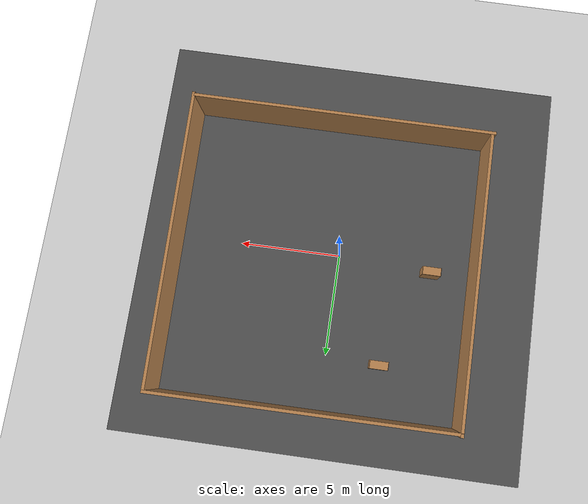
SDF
<sdf version="1.7">
 <world name="default">
  <light name="sun" type="directional">
   <pose>0 0 10 0 -0 0</pose>
   <diffuse>0.8 0.8 0.8 1</diffuse>
   <specular>0.2 0.2 0.2 1</specular>
   <attenuation>
    <range>1000</range>
    <constant>0.9</constant>
    <linear>0.01</linear>
    <quadratic>0.001</quadratic>
   </attenuation>
   <direction>-0.5 0.1 -0.9</direction>
   <spot><inner_angle>0</inner_angle><outer_angle>0</outer_angle><falloff>0</falloff></spot>
  </light>
  <model name="ground_plane">
   <static>1</static>
   <link name="link">
    <collision name="collision">
     <geometry><plane><normal>0 0 1</normal><size>100 100</size></plane></geometry>
     <surface><friction><ode><mu>100</mu><mu2>50</mu2></ode></friction></surface>
    </collision>
    <visual name="visual">
     <cast_shadows>0</cast_shadows>
     <geometry><plane><normal>0 0 1</normal><size>100 100</size></plane></geometry>
     <material>
      <script><uri>file://media/materials/scripts/gazebo.material</uri><name>Gazebo/Grey</name></script>
     </material>
    </visual>
   </link>
  </model>
  <gravity>0 0 -9.8</gravity>
  <magnetic_field>6e-06 2.3e-05 -4.2e-05</magnetic_field>
  <atmosphere type="adiabatic"/>
  <physics type="ode">
   <max_step_size>0.001</max_step_size>
   <real_time_factor>1</real_time_factor>
   <real_time_update_rate>1000</real_time_update_rate>
  </physics>
  <scene><ambient>0.4 0.4 0.4 1</ambient><background>0.7 0.7 0.7 1</background><shadows>1</shadows></scene>
  <audio><device>default</device></audio>
  <spherical_coordinates>
   <surface_model>EARTH_WGS84</surface_model>
   <latitude_deg>0</latitude_deg>
   <longitude_deg>0</longitude_deg>
   <elevation>0</elevation>
   <heading_deg>0</heading_deg>
  </spherical_coordinates>
  <model name="test_world">
   <pose>0.70425 0.562045 0 0 -0 0</pose>
   <link name="Wall_1">
    <collision name="Wall_1_Collision">
     <geometry><box><size>14.5 0.15 2.5</size></box></geometry>
     <pose>0 0 1.25 0 -0 0</pose>
    </collision>
    <visual name="Wall_1_Visual">
     <pose>0 0 1.25 0 -0 0</pose>
     <geometry><box><size>14.5 0.15 2.5</size></box></geometry>
     <material>
      <script><uri>file://media/materials/scripts/gazebo.material</uri><name>Gazebo/Wood</name></script>
      <ambient>1 1 1 1</ambient>
     </material>
     <meta><layer>0</layer></meta>
    </visual>
    <pose>-7.32947 0.055351 0 0 -0 1.5708</pose>
   </link>
   <link name="Wall_5">
    <collision name="Wall_5_Collision">
     <geometry><box><size>14.7199 0.15 2.5</size></box></geometry>
     <pose>0 0 1.25 0 -0 0</pose>
    </collision>
    <visual name="Wall_5_Visual">
     <pose>0 0 1.25 0 -0 0</pose>
     <geometry><box><size>14.7199 0.15 2.5</size></box></geometry>
     <material>
      <script><uri>file://media/materials/scripts/gazebo.material</uri><name>Gazebo/Wood</name></script>
      <ambient>0.752941 0.109804 0.156863 1</ambient>
     </material>
     <meta><layer>0</layer></meta>
    </visual>
    <pose>-0.044764 7.19959 0 0 -0 0.004223</pose>
   </link>
   <link name="Wall_8">
    <collision name="Wall_8_Collision">
     <geometry><box><size>14.6119 0.15 2.5</size></box></geometry>
     <pose>0 0 1.25 0 -0 0</pose>
    </collision>
    <visual name="Wall_8_Visual">
     <pose>0 0 1.25 0 -0 0</pose>
     <geometry><box><size>14.6119 0.15 2.5</size></box></geometry>
     <material>
      <script><uri>file://media/materials/scripts/gazebo.material</uri><name>Gazebo/Wood</name></script>
      <ambient>1 1 1 1</ambient>
     </material>
     <meta><layer>0</layer></meta>
    </visual>
    <pose>7.33223 -0 0 0 -0 -1.55803</pose>
   </link>
   <link name="Wall_9">
    <collision name="Wall_9_Collision">
     <geometry><box><size>15 0.15 2.5</size></box></geometry>
     <pose>0 0 1.25 0 -0 0</pose>
    </collision>
    <visual name="Wall_9_Visual">
     <pose>0 0 1.25 0 -0 0</pose>
     <geometry><box><size>15 0.15 2.5</size></box></geometry>
     <material>
      <script><uri>file://media/materials/scripts/gazebo.material</uri><name>Gazebo/Wood</name></script>
      <ambient>1 1 1 1</ambient>
     </material>
     <meta><layer>0</layer></meta>
    </visual>
    <pose>-0.000475 -7.16882 0 0 -0 3.14159</pose>
   </link>
   <static>1</static>
  </model>
  <model name="asphalt_plane">
   <static>1</static>
   <link name="link">
    <collision name="collision"><geometry><box><size>20 20 0.1</size></box></geometry></collision>
    <visual name="visual">
     <cast_shadows>0</cast_shadows>
     <geometry><box><size>20 20 0.1</size></box></geometry>
     <material>
      <script>
       <uri>model://asphalt_plane/materials/scripts</uri>
       <uri>model://asphalt_plane/materials/textures</uri>
       <name>vrc/asphalt</name>
      </script>
     </material>
    </visual>
   </link>
   <pose>0.020136 -0.034537 0 0 -0 0</pose>
  </model>
  <model name="bookshelf">
   <static>1</static>
   <link name="link">
    <inertial><mass>1</mass></inertial>
    <collision name="back">
     <pose>0 0.005 0.6 0 -0 0</pose>
     <geometry><box><size>0.9 0.01 1.2</size></box></geometry>
    </collision>
    <visual name="visual1">
     <pose>0 0.005 0.6 0 -0 0</pose>
     <geometry><box><size>0.9 0.01 1.2</size></box></geometry>
     <material>
      <script><uri>file://media/materials/scripts/gazebo.material</uri><name>Gazebo/Wood</name></script>
     </material>
    </visual>
    <collision name="left_side">
     <pose>0.45 -0.195 0.6 0 -0 0</pose>
     <geometry><box><size>0.02 0.4 1.2</size></box></geometry>
    </collision>
    <visual name="visual2">
     <pose>0.45 -0.195 0.6 0 -0 0</pose>
     <geometry><box><size>0.02 0.4 1.2</size></box></geometry>
     <material>
      <script><uri>file://media/materials/scripts/gazebo.material</uri><name>Gazebo/Wood</name></script>
     </material>
    </visual>
    <collision name="right_side">
     <pose>-0.45 -0.195 0.6 0 -0 0</pose>
     <geometry><box><size>0.02 0.4 1.2</size></box></geometry>
    </collision>
    <visual name="visual3">
     <pose>-0.45 -0.195 0.6 0 -0 0</pose>
     <geometry><box><size>0.02 0.4 1.2</size></box></geometry>
     <material>
      <script><uri>file://media/materials/scripts/gazebo.material</uri><name>Gazebo/Wood</name></script>
     </material>
    </visual>
    <collision name="bottom">
     <pose>0 -0.195 0.03 0 -0 0</pose>
     <geometry><box><size>0.88 0.4 0.06</size></box></geometry>
    </collision>
    <visual name="visual4">
     <pose>0 -0.195 0.03 0 -0 0</pose>
     <geometry><box><size>0.88 0.4 0.06</size></box></geometry>
     <material>
      <script><uri>file://media/materials/scripts/gazebo.material</uri><name>Gazebo/Wood</name></script>
     </material>
    </visual>
    <collision name="top">
     <pose>0 -0.195 1.19 0 -0 0</pose>
     <geometry><box><size>0.88 0.4 0.02</size></box></geometry>
    </collision>
    <visual name="visual5">
     <pose>0 -0.195 1.19 0 -0 0</pose>
     <geometry><box><size>0.88 0.4 0.02</size></box></geometry>
     <material>
      <script><uri>file://media/materials/scripts/gazebo.material</uri><name>Gazebo/Wood</name></script>
     </material>
    </visual>
    <collision name="low_shelf">
     <pose>0 -0.195 0.43 0 -0 0</pose>
     <geometry><box><size>0.88 0.4 0.02</size></box></geometry>
    </collision>
    <visual name="visual6">
     <pose>0 -0.195 0.43 0 -0 0</pose>
     <geometry><box><size>0.88 0.4 0.02</size></box></geometry>
     <material>
      <script><uri>file://media/materials/scripts/gazebo.material</uri><name>Gazebo/Wood</name></script>
     </material>
    </visual>
    <collision name="high_shelf">
     <pose>0 -0.195 0.8 0 -0 0</pose>
     <geometry><box><size>0.88 0.4 0.02</size></box></geometry>
    </collision>
    <visual name="visual7">
     <pose>0 -0.195 0.8 0 -0 0</pose>
     <geometry><box><size>0.88 0.4 0.02</size></box></geometry>
     <material>
      <script><uri>file://media/materials/scripts/gazebo.material</uri><name>Gazebo/Wood</name></script>
     </material>
    </visual>
   </link>
   <pose>-2.6058 5.35101 0 0 -0 0</pose>
  </model>
  <model name="bookshelf_0">
   <static>1</static>
   <link name="link">
    <inertial><mass>1</mass></inertial>
    <collision name="back">
     <pose>0 0.005 0.6 0 -0 0</pose>
     <geometry><box><size>0.9 0.01 1.2</size></box></geometry>
    </collision>
    <visual name="visual1">
     <pose>0 0.005 0.6 0 -0 0</pose>
     <geometry><box><size>0.9 0.01 1.2</size></box></geometry>
     <material>
      <script><uri>file://media/materials/scripts/gazebo.material</uri><name>Gazebo/Wood</name></script>
     </material>
    </visual>
    <collision name="left_side">
     <pose>0.45 -0.195 0.6 0 -0 0</pose>
     <geometry><box><size>0.02 0.4 1.2</size></box></geometry>
    </collision>
    <visual name="visual2">
     <pose>0.45 -0.195 0.6 0 -0 0</pose>
     <geometry><box><size>0.02 0.4 1.2</size></box></geometry>
     <material>
      <script><uri>file://media/materials/scripts/gazebo.material</uri><name>Gazebo/Wood</name></script>
     </material>
    </visual>
    <collision name="right_side">
     <pose>-0.45 -0.195 0.6 0 -0 0</pose>
     <geometry><box><size>0.02 0.4 1.2</size></box></geometry>
    </collision>
    <visual name="visual3">
     <pose>-0.45 -0.195 0.6 0 -0 0</pose>
     <geometry><box><size>0.02 0.4 1.2</size></box></geometry>
     <material>
      <script><uri>file://media/materials/scripts/gazebo.material</uri><name>Gazebo/Wood</name></script>
     </material>
    </visual>
    <collision name="bottom">
     <pose>0 -0.195 0.03 0 -0 0</pose>
     <geometry><box><size>0.88 0.4 0.06</size></box></geometry>
    </collision>
    <visual name="visual4">
     <pose>0 -0.195 0.03 0 -0 0</pose>
     <geometry><box><size>0.88 0.4 0.06</size></box></geometry>
     <material>
      <script><uri>file://media/materials/scripts/gazebo.material</uri><name>Gazebo/Wood</name></script>
     </material>
    </visual>
    <collision name="top">
     <pose>0 -0.195 1.19 0 -0 0</pose>
     <geometry><box><size>0.88 0.4 0.02</size></box></geometry>
    </collision>
    <visual name="visual5">
     <pose>0 -0.195 1.19 0 -0 0</pose>
     <geometry><box><size>0.88 0.4 0.02</size></box></geometry>
     <material>
      <script><uri>file://media/materials/scripts/gazebo.material</uri><name>Gazebo/Wood</name></script>
     </material>
    </visual>
    <collision name="low_shelf">
     <pose>0 -0.195 0.43 0 -0 0</pose>
     <geometry><box><size>0.88 0.4 0.02</size></box></geometry>
    </collision>
    <visual name="visual6">
     <pose>0 -0.195 0.43 0 -0 0</pose>
     <geometry><box><size>0.88 0.4 0.02</size></box></geometry>
     <material>
      <script><uri>file://media/materials/scripts/gazebo.material</uri><name>Gazebo/Wood</name></script>
     </material>
    </visual>
    <collision name="high_shelf">
     <pose>0 -0.195 0.8 0 -0 0</pose>
     <geometry><box><size>0.88 0.4 0.02</size></box></geometry>
    </collision>
    <visual name="visual7">
     <pose>0 -0.195 0.8 0 -0 0</pose>
     <geometry><box><size>0.88 0.4 0.02</size></box></geometry>
     <material>
      <script><uri>file://media/materials/scripts/gazebo.material</uri><name>Gazebo/Wood</name></script>
     </material>
    </visual>
   </link>
   <pose>-4.60167 0.512297 0 0 -0 0</pose>
  </model>
 </world>
</sdf>
